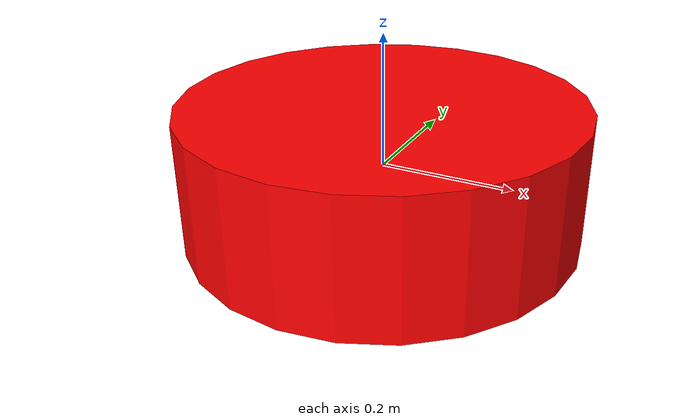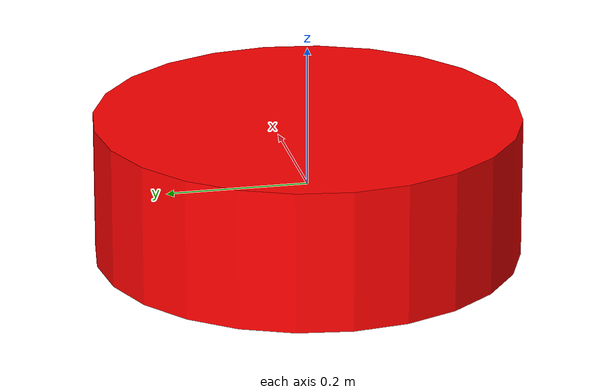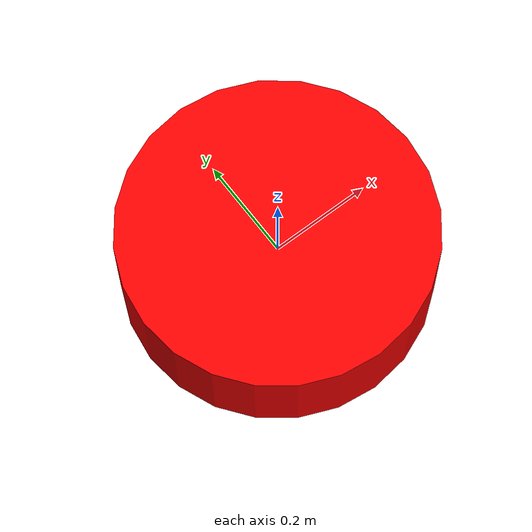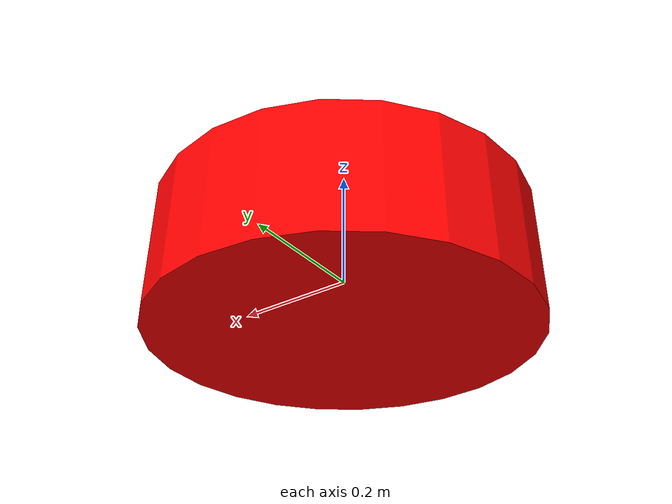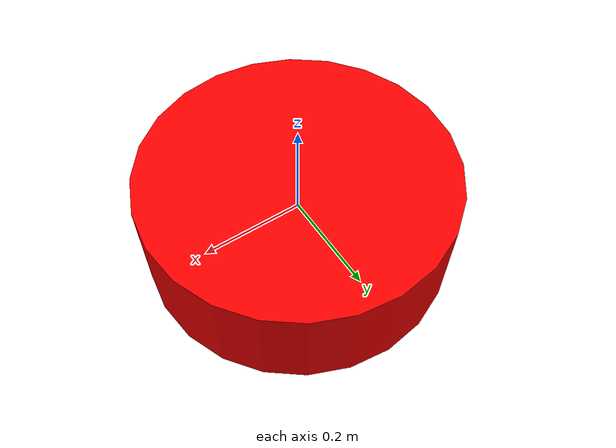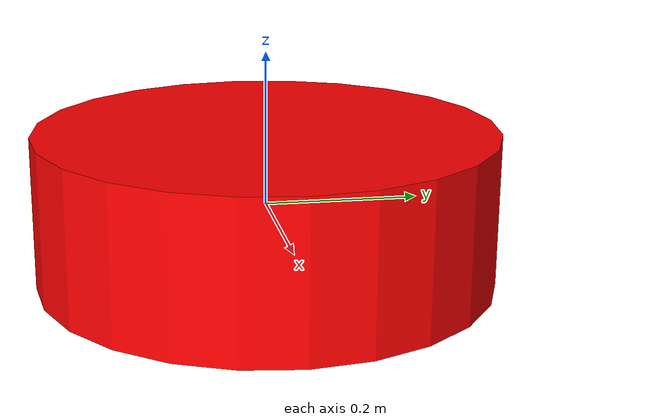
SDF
<sdf version="1.9">
    <model name='tire_model'>
        <link name='tire_link'>
            <pose> 0 0 0 0 0 0</pose>
            <inertial><!--튜토리얼에서 그대로 가져올떄는 반지름 0.4 기준 관성이었기 때문에 수정함-->
                    <mass>1</mass>
                    <inertia>
                        <ixx>0.025833</ixx>
                        <ixy>0</ixy>
                        <ixz>0</ixz>
                        <iyy>0.025833</iyy>
                        <iyz>0</iyz>
                        <izz>0.045</izz>
                    </inertia>
            </inertial>

            <visual name='visual'>
                <geometry>
                    <cylinder> <!--라이다 센서에 걸려서 반지름 줄임. car.sdf파일에서 축도 변경해서 내릴 생각-->
                        <radius>0.3</radius>
                        <length>0.2</length>
                    </cylinder>
                </geometry>
                <material>
                    <ambient>1.0 0.0 0.0 1</ambient>
                    <diffuse>1.0 0.0 0.0 1</diffuse>
                    <specular>1.0 0.0 0.0 1</specular>
                </material>
            </visual>
            <collision name='tire_collision'>
                <geometry>
                    <cylinder>
                        <radius>0.3</radius>
                        <length>0.2</length>
                    </cylinder>
                </geometry>
                <surface>
                    <contact>
                        <collide_bitmask>0x01</collide_bitmask>
                    </contact>
                    <friction>
                        <ode>
                            <mu>1.0</mu>
                            <mu2>1.0</mu2>
                        </ode>
                    </friction>
                </surface>
            </collision>
            <!-- 타이어에도 contact sensor를 부착-->
            <!-- 한 파일에 넣으니까 다른 모든 타이어에 적용됨-->

            <!-- 타이어 contact sensor -->
            <sensor name="contact_sensor_tire" type="contact">
                <contact>
                    <collision>tire_collision</collision>
                </contact>
                <always_on>1</always_on>
                <update_rate>30</update_rate>
                <topic>contact_tire</topic>
            </sensor>
        </link>
    </model>
</sdf>
